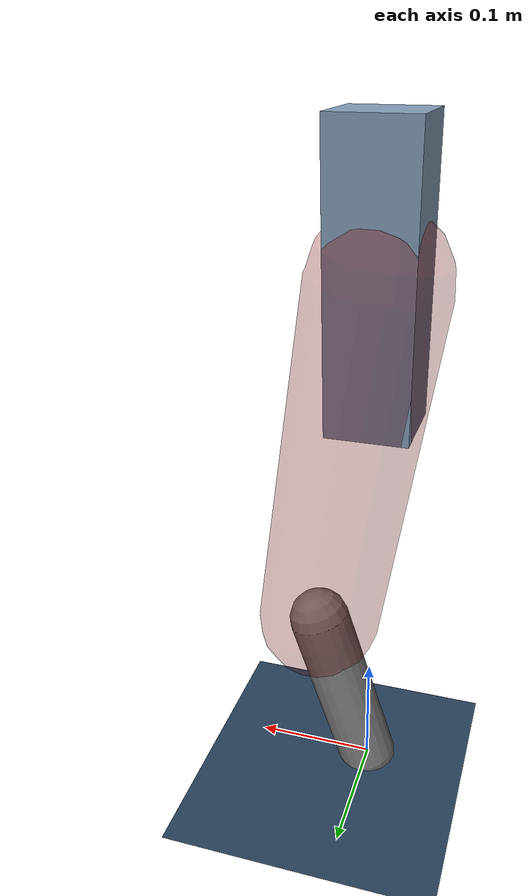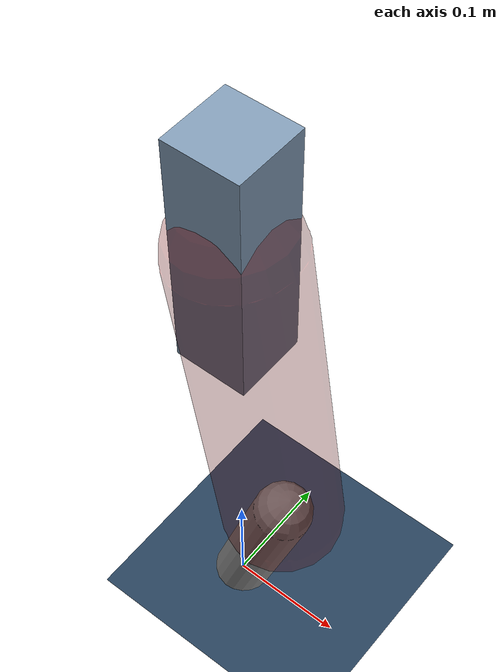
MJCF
<mujoco model="Hopper2D">
	<compiler inertiafromgeom="true" angle="radian" />
	<option timestep="0.001" integrator="implicit" cone="elliptic" solver="Newton" tolerance="1e-10" />

	<default>
		<geom contype="1" conaffinity="1" condim="3" friction="2 0.005 0.0001" solref="0.005 1" />
		<joint limited="true" damping="0.1" />
	</default>

	<asset>
		<texture name="skybox" type="skybox" builtin="gradient" rgb1=".4 .6 .8" rgb2="0 0 0" width="800" height="800" />
		<texture name="grid" type="2d" builtin="checker" rgb1=".1 .2 .3" rgb2=".2 .3 .4" width="300" height="300" mark="edge" markrgb=".2 .3 .4" />
		<material name="ground" texture="grid" texrepeat="1 1" texuniform="true" reflectance="0.1" />
		<material name="leg" rgba="0.5 0.6 0.7 1" />
	</asset>

	<worldbody>

		<geom name="floor" type="plane" size="5 5 0.25" material="ground" />

		<light directional="false" diffuse="0.8 0.8 0.8" specular="0.3 0.3 0.3" pos="0 0 2" dir="0 0 -1" />
		<light mode="targetbodycom" target="base" directional="false" diffuse="0.8 0.8 0.8" specular="0.3 0.3 0.3" pos="0 0 2" dir="0 0 -1" />

		<camera name="fixed" pos="0 -2 1" xyaxes="1 0 0 0 0 1" />
		<camera name="tracking" mode="trackcom" pos="0 -3 1" />

		<body name="root" pos="0 0 0.425442507468794">
			<joint name="slide_x" type="slide" axis="1 0 0" range="-100 100" />
			<joint name="slide_z" type="slide" axis="0 0 1" range="0 10" />

			<body name="base" pos="0 0 0">
				<geom name="torso" type="box" size="0.03 0.03 0.1" mass="2.167" material="leg" />

				<body name="link1" pos="0 0 0" euler="0 1.415175573304556 0">
					<joint type="hinge" axis="0 -1 0" pos="0 0 0" name="hinge1" limited="true" range="-3.14 3.14" stiffness="0" damping="0.1" />
					<geom name="thigh" type="capsule" fromto="0 0 0 0.28428453777328044 0 0" size="0.05" rgba="0.5 0 0 0.3" mass="0.9465397982105292" />

					<body name="link2" pos="0.28428453777328044 0 0" euler="0 0.4514130609715857 0">
						<joint type="hinge" axis="0 -1 0" pos="0 0 0" name="hinge2" limited="true" range="-3.14 3.14" stiffness="0" damping="0.1" />
						<geom name="shank" type="capsule" fromto="0 0 0 0.15115796969551357 0 0" size="0.025" mass="0.3587421727259622" />

					</body>
				</body>
			</body>
		</body>
	</worldbody>

	<actuator>
		<motor name="torque1" joint="hinge1" ctrlrange="-42.252165953542665 42.252165953542665" ctrllimited="true" gear="1" />
		<motor name="torque2" joint="hinge2" ctrlrange="-59.65486619552094 59.65486619552094" ctrllimited="true" gear="1" />
	</actuator>
</mujoco>
